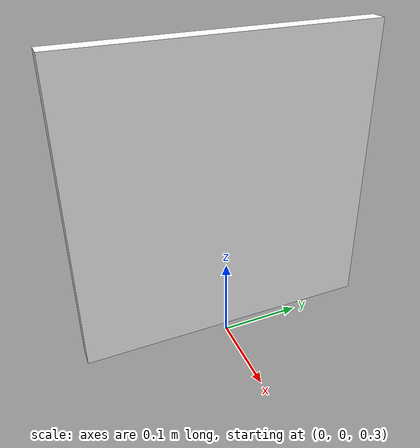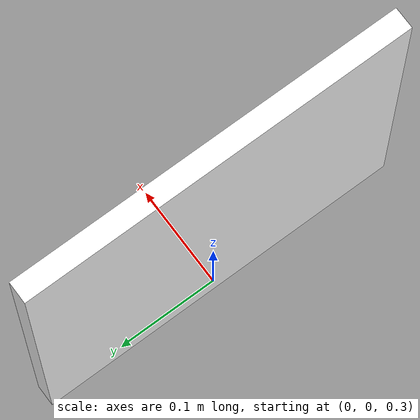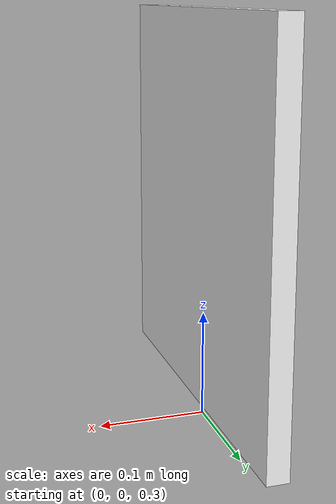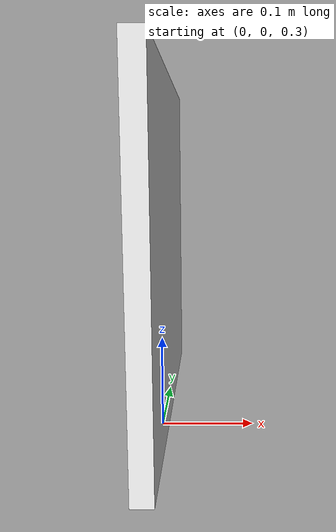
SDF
<?xml version="1.0" ?>
<sdf version='1.7'>
  <model name='apriltag_board'>
    <pose>0 0 0.5 0 1.57 0</pose>
    <static>true</static>

    <link name='board'>
      <visual name='visual'>
        <geometry>
          <box>
            <size>0.36 0.36 0.02</size>
          </box>
        </geometry>
        <material>
          <ambient>1 1 1 1</ambient>
          <diffuse>1 1 1 1</diffuse>
        </material>
      </visual>
      <collision name='collision'>
        <geometry>
          <box>
            <size>0.36 0.36 0.02</size>
          </box>
        </geometry>
      </collision>
    </link>
  </model>
</sdf>
